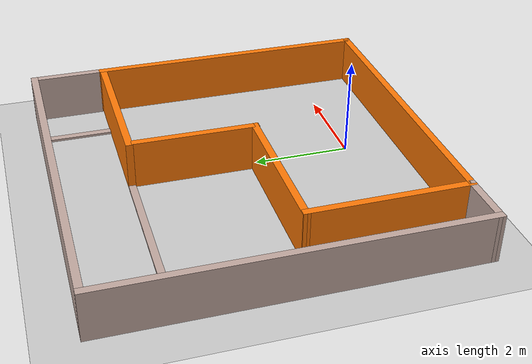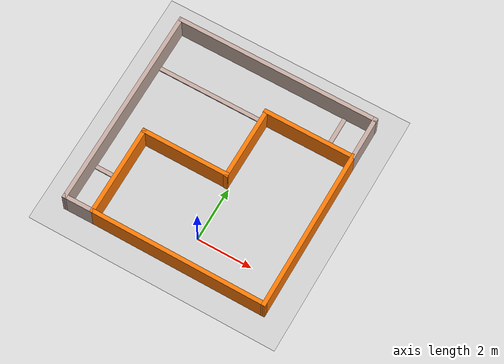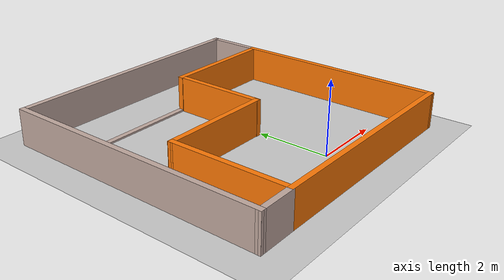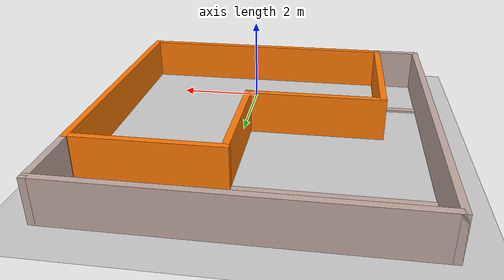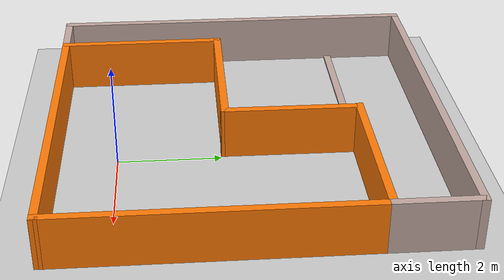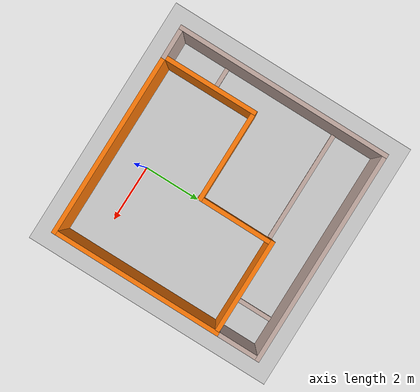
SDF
<sdf version="1.6">
 <world name="default">
  <light name="sun" type="directional">
   <pose>0 0 10 0 -0 0</pose>
   <diffuse>0.8 0.8 0.8 1</diffuse>
   <specular>0.2 0.2 0.2 1</specular>
   <attenuation>
    <range>1000</range>
    <constant>0.9</constant>
    <linear>0.01</linear>
    <quadratic>0.001</quadratic>
   </attenuation>
   <direction>-0.5 0.1 -0.9</direction>
  </light>
  <model name="ground_plane">
   <static>1</static>
   <link name="link">
    <collision name="collision">
     <geometry><plane><normal>0 0 1</normal><size>100 100</size></plane></geometry>
     <surface>
      <contact><collide_bitmask>65535</collide_bitmask></contact>
      <friction><ode><mu>100</mu><mu2>50</mu2></ode></friction>
     </surface>
    </collision>
    <visual name="visual">
     <cast_shadows>0</cast_shadows>
     <geometry><plane><normal>0 0 1</normal><size>100 100</size></plane></geometry>
     <material>
      <script><uri>file://media/materials/scripts/gazebo.material</uri><name>Gazebo/Grey</name></script>
     </material>
    </visual>
   </link>
  </model>
  <gravity>0 0 -9.8</gravity>
  <magnetic_field>6e-06 2.3e-05 -4.2e-05</magnetic_field>
  <atmosphere type="adiabatic"/>
  <physics name="default_physics" default="0" type="ode">
   <max_step_size>0.001</max_step_size>
   <real_time_factor>1</real_time_factor>
   <real_time_update_rate>1000</real_time_update_rate>
  </physics>
  <scene><ambient>0.4 0.4 0.4 1</ambient><background>0.7 0.7 0.7 1</background><shadows>1</shadows></scene>
  <spherical_coordinates>
   <surface_model>EARTH_WGS84</surface_model>
   <latitude_deg>0</latitude_deg>
   <longitude_deg>0</longitude_deg>
   <elevation>0</elevation>
   <heading_deg>0</heading_deg>
  </spherical_coordinates>
  <model name="Untitled">
   <pose>-0.568502 2.5032 -0 0 -0 0</pose>
   <link name="Wall_1">
    <collision name="Wall_1_Collision">
     <geometry><box><size>7.5 0.15 1</size></box></geometry>
     <pose>0 0 0.5 0 -0 0</pose>
    </collision>
    <visual name="Wall_1_Visual">
     <pose>0 0 0.5 0 -0 0</pose>
     <geometry><box><size>7.5 0.15 1</size></box></geometry>
     <material>
      <script><uri>file://media/materials/scripts/gazebo.material</uri><name>Gazebo/Grey</name></script>
      <ambient>0.760784 0.662745 0.627451 1</ambient>
     </material>
     <meta><layer>0</layer></meta>
    </visual>
    <pose>-3.67476 0.00029 0 0 -0 1.5708</pose>
   </link>
   <link name="Wall_12">
    <collision name="Wall_12_Collision">
     <geometry><box><size>1.5 0.15 0.05</size></box></geometry>
     <pose>0 0 0.025 0 -0 0</pose>
    </collision>
    <visual name="Wall_12_Visual">
     <pose>0 0 0.025 0 -0 0</pose>
     <geometry><box><size>1.5 0.15 0.05</size></box></geometry>
     <material>
      <script><uri>file://media/materials/scripts/gazebo.material</uri><name>Gazebo/Grey</name></script>
      <ambient>0.760784 0.662745 0.627451 1</ambient>
     </material>
     <meta><layer>0</layer></meta>
    </visual>
    <pose>2.63724 2.90229 0 0 -0 1.5708</pose>
   </link>
   <link name="Wall_14">
    <collision name="Wall_14_Collision">
     <geometry><box><size>1 0.15 0.05</size></box></geometry>
     <pose>0 0 0.025 0 -0 0</pose>
    </collision>
    <visual name="Wall_14_Visual">
     <pose>0 0 0.025 0 -0 0</pose>
     <geometry><box><size>1 0.15 0.05</size></box></geometry>
     <material>
      <script><uri>file://media/materials/scripts/gazebo.material</uri><name>Gazebo/Grey</name></script>
      <ambient>0.760784 0.662745 0.627451 1</ambient>
     </material>
     <meta><layer>0</layer></meta>
    </visual>
    <pose>-3.21676 -1.96971 0 0 -0 0</pose>
   </link>
   <link name="Wall_16">
    <collision name="Wall_16_Collision">
     <geometry><box><size>4.25 0.15 0.05</size></box></geometry>
     <pose>0 0 0.025 0 -0 0</pose>
    </collision>
    <visual name="Wall_16_Visual">
     <pose>0 0 0.025 0 -0 0</pose>
     <geometry><box><size>4.25 0.15 0.05</size></box></geometry>
     <material>
      <script><uri>file://media/materials/scripts/gazebo.material</uri><name>Gazebo/Grey</name></script>
      <ambient>0.760784 0.662745 0.627451 1</ambient>
     </material>
     <meta><layer>0</layer></meta>
    </visual>
    <pose>-1.60876 2.15729 0 0 -0 0</pose>
   </link>
   <link name="Wall_17">
    <collision name="Wall_17_Collision">
     <geometry><box><size>3.25 0.15 1</size></box></geometry>
     <pose>0 0 0.5 0 -0 0</pose>
    </collision>
    <visual name="Wall_17_Visual">
     <pose>0 0 0.5 0 -0 0</pose>
     <geometry><box><size>3.25 0.15 1</size></box></geometry>
     <material>
      <script><uri>file://media/materials/scripts/gazebo.material</uri><name>Gazebo/Grey</name></script>
      <ambient>0.996078 0.47451 0.0196078 1</ambient>
     </material>
     <meta><layer>0</layer></meta>
    </visual>
    <pose>1.99124 2.15729 0 0 -0 0</pose>
   </link>
   <link name="Wall_2">
    <collision name="Wall_2_Collision">
     <geometry><box><size>7.5 0.15 1</size></box></geometry>
     <pose>0 0 0.5 0 -0 0</pose>
    </collision>
    <visual name="Wall_2_Visual">
     <pose>0 0 0.5 0 -0 0</pose>
     <geometry><box><size>7.5 0.15 1</size></box></geometry>
     <material>
      <script><uri>file://media/materials/scripts/gazebo.material</uri><name>Gazebo/Grey</name></script>
      <ambient>0.760784 0.662745 0.627451 1</ambient>
     </material>
     <meta><layer>0</layer></meta>
    </visual>
    <pose>0.000243 3.67529 0 0 -0 0</pose>
   </link>
   <link name="Wall_20">
    <collision name="Wall_20_Collision">
     <geometry><box><size>1.18003 0.15 1</size></box></geometry>
     <pose>0 0 0.5 0 -0 0</pose>
    </collision>
    <visual name="Wall_20_Visual">
     <pose>0 0 0.5 0 -0 0</pose>
     <geometry><box><size>1.18003 0.15 1</size></box></geometry>
     <material>
      <script><uri>file://media/materials/scripts/gazebo.material</uri><name>Gazebo/Grey</name></script>
      <ambient>0.760784 0.662745 0.627451 1</ambient>
     </material>
     <meta><layer>0</layer></meta>
    </visual>
    <pose>-3.15976 -3.67071 0 0 -0 0.007767</pose>
   </link>
   <link name="Wall_21">
    <collision name="Wall_21_Collision">
     <geometry><box><size>6.47 0.15 1</size></box></geometry>
     <pose>0 0 0.5 0 -0 0</pose>
    </collision>
    <visual name="Wall_21_Visual">
     <pose>0 0 0.5 0 -0 0</pose>
     <geometry><box><size>6.47 0.15 1</size></box></geometry>
     <material>
      <script><uri>file://media/materials/scripts/gazebo.material</uri><name>Gazebo/Grey</name></script>
      <ambient>0.996078 0.47451 0.0196078 1</ambient>
     </material>
     <meta><layer>0</layer></meta>
    </visual>
    <pose>0.515243 -3.67071 0 0 -0 -0.001266</pose>
   </link>
   <link name="Wall_23">
    <collision name="Wall_23_Collision">
     <geometry><box><size>6 0.15 1</size></box></geometry>
     <pose>0 0 0.5 0 -0 0</pose>
    </collision>
    <visual name="Wall_23_Visual">
     <pose>0 0 0.5 0 -0 0</pose>
     <geometry><box><size>6 0.15 1</size></box></geometry>
     <material>
      <script><uri>file://media/materials/scripts/gazebo.material</uri><name>Gazebo/Grey</name></script>
      <ambient>0.996078 0.47451 0.0196078 1</ambient>
     </material>
     <meta><layer>0</layer></meta>
    </visual>
    <pose>3.67524 -0.74971 0 0 -0 1.5708</pose>
   </link>
   <link name="Wall_24">
    <collision name="Wall_24_Collision">
     <geometry><box><size>1.65 0.15 1</size></box></geometry>
     <pose>0 0 0.5 0 -0 0</pose>
    </collision>
    <visual name="Wall_24_Visual">
     <pose>0 0 0.5 0 -0 0</pose>
     <geometry><box><size>1.65 0.15 1</size></box></geometry>
     <material>
      <script><uri>file://media/materials/scripts/gazebo.material</uri><name>Gazebo/Grey</name></script>
      <ambient>0.760784 0.662745 0.627451 1</ambient>
     </material>
     <meta><layer>0</layer></meta>
    </visual>
    <pose>3.67524 2.92529 0 0 -0 1.5708</pose>
   </link>
   <link name="Wall_6">
    <collision name="Wall_6_Collision">
     <geometry><box><size>3.37952 0.15 1</size></box></geometry>
     <pose>0 0 0.5 0 -0 0</pose>
    </collision>
    <visual name="Wall_6_Visual">
     <pose>0 0 0.5 0 -0 0</pose>
     <geometry><box><size>3.37952 0.15 1</size></box></geometry>
     <material>
      <script><uri>file://media/materials/scripts/gazebo.material</uri><name>Gazebo/Grey</name></script>
      <ambient>0.996078 0.47451 0.0196078 1</ambient>
     </material>
     <meta><layer>0</layer></meta>
    </visual>
    <pose>-2.65051 -2.05196 0 0 -0 1.57436</pose>
   </link>
   <link name="Wall_7">
    <collision name="Wall_7_Collision">
     <geometry><box><size>3.25 0.15 1</size></box></geometry>
     <pose>0 0 0.5 0 -0 0</pose>
    </collision>
    <visual name="Wall_7_Visual">
     <pose>0 0 0.5 0 -0 0</pose>
     <geometry><box><size>3.25 0.15 1</size></box></geometry>
     <material>
      <script><uri>file://media/materials/scripts/gazebo.material</uri><name>Gazebo/Grey</name></script>
      <ambient>0.996078 0.47451 0.0196078 1</ambient>
     </material>
     <meta><layer>0</layer></meta>
    </visual>
    <pose>-1.10626 -0.42571 0 0 -0 0</pose>
   </link>
   <link name="Wall_8">
    <collision name="Wall_8_Collision">
     <geometry><box><size>2.62053 0.15 1</size></box></geometry>
     <pose>0 0 0.5 0 -0 0</pose>
    </collision>
    <visual name="Wall_8_Visual">
     <pose>0 0 0.5 0 -0 0</pose>
     <geometry><box><size>2.62053 0.15 1</size></box></geometry>
     <material>
      <script><uri>file://media/materials/scripts/gazebo.material</uri><name>Gazebo/Grey</name></script>
      <ambient>0.996078 0.47451 0.0196078 1</ambient>
     </material>
     <meta><layer>0</layer></meta>
    </visual>
    <pose>0.449493 0.79804 0 0 -0 1.56614</pose>
   </link>
   <static>1</static>
  </model>
 </world>
</sdf>
